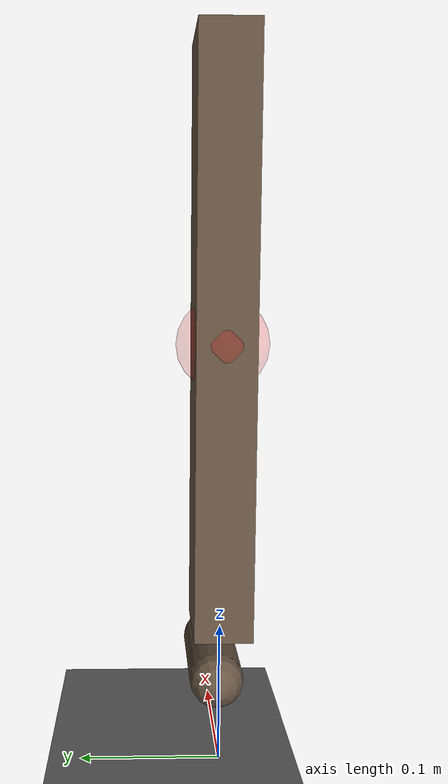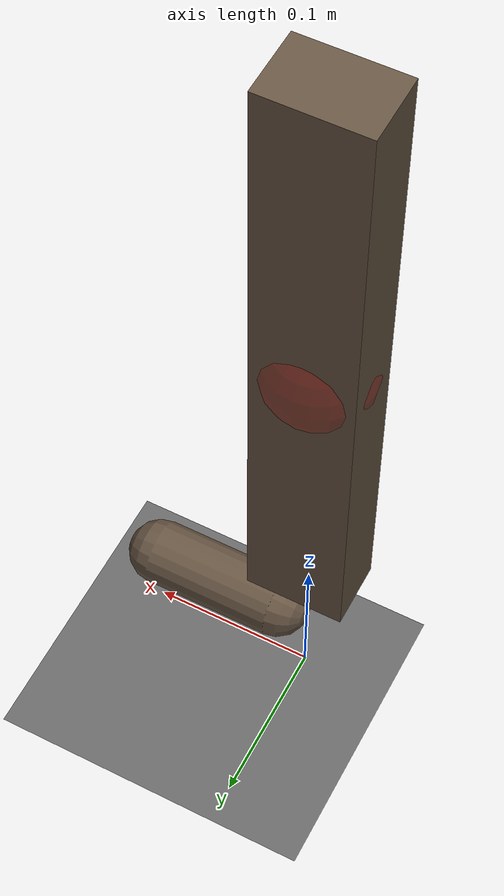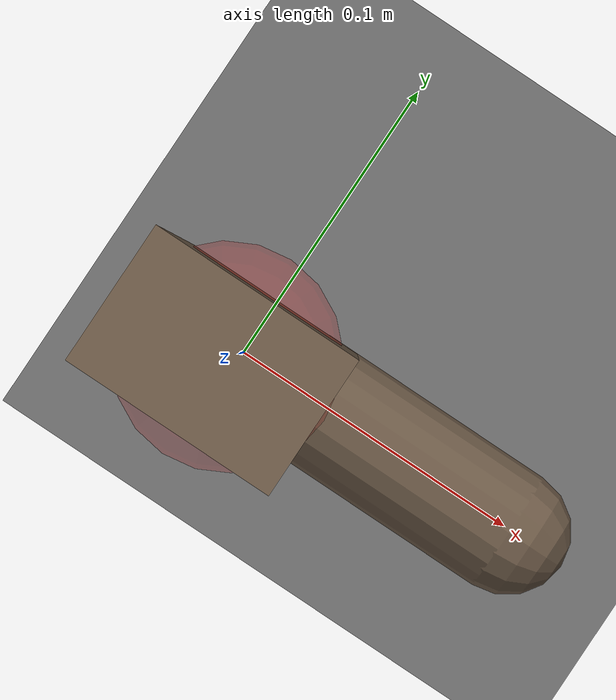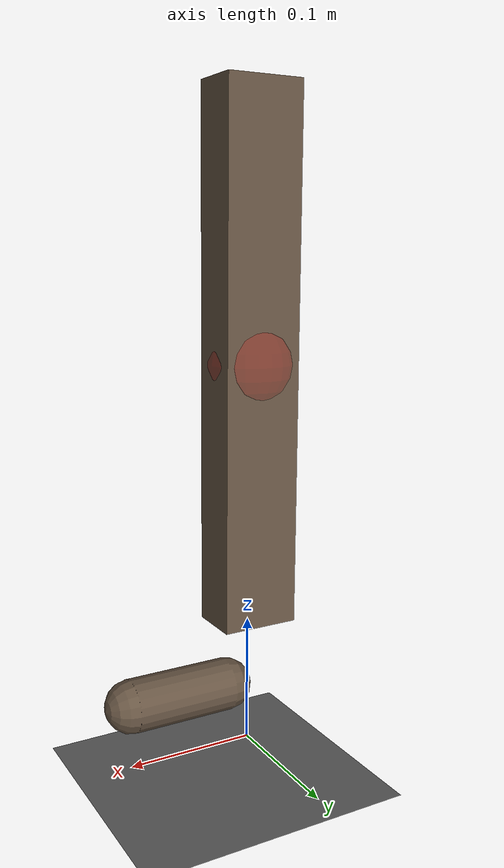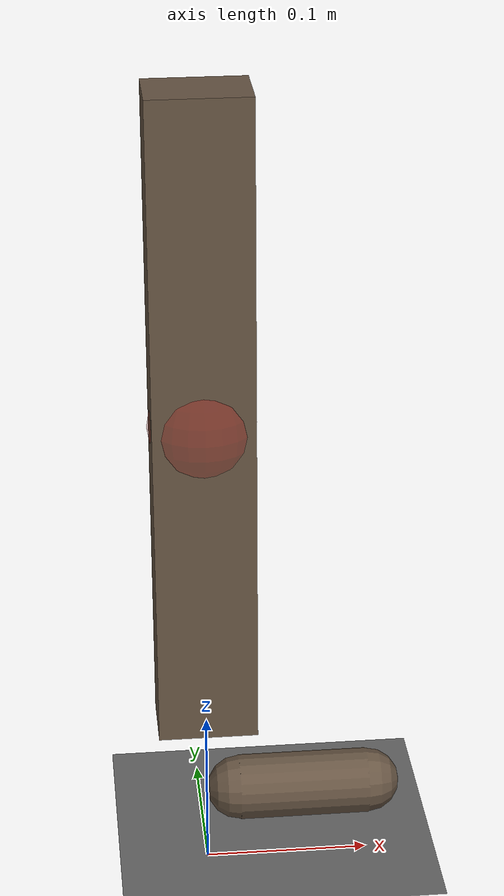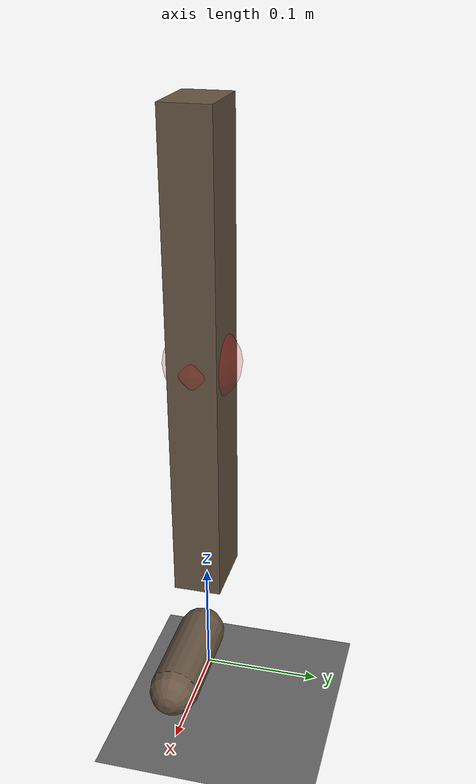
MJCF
<mujoco model="skate">
  <compiler angle="radian" inertiafromgeom="true"/>
  <default>
    <joint armature="1" limited="true"/>
    <geom conaffinity="0" contype="0" friction="1 0.1 0.1" rgba="0.4 0.33 0.26 1.0"/>
  </default>
  <!-- Removed RK4 integrator for brax. -->
  <option gravity="0 0 -9.81" timestep="0.01" />
  <custom>
    <!-- brax custom params -->
    <numeric data="0 0 .1 0" name="init_qpos"/>
    <numeric data="1000" name="constraint_stiffness"/>
    <numeric data="1000" name="constraint_limit_stiffness"/>
    <numeric data="3" name="constraint_vel_damping"/>
    <numeric data="0.1" name="constraint_ang_damping"/>
    <numeric data="0.0" name="ang_damping"/>
    <numeric data="0" name="spring_mass_scale"/>
    <numeric data="1" name="spring_inertia_scale"/>
    <numeric data="5" name="solver_maxls"/>
  </custom>
  <asset>
    <texture builtin="gradient" height="100" rgb1="1 1 1" rgb2="0 0 0" type="skybox" width="100"/>
    <texture builtin="flat" height="1278" mark="cross" markrgb="1 1 1" name="texgeom" random="0.01" rgb1="0.8 0.6 0.4" rgb2="0.8 0.6 0.4" type="cube" width="127"/>
    <texture builtin="checker" height="100" name="texplane" rgb1="0 0 0" rgb2="0.8 0.8 0.8" type="2d" width="100"/>
    <material name="MatPlane" reflectance="0.5" shininess="1" specular="1" texrepeat="60 60" texture="texplane"/>
    <material name="geom" texture="texgeom" texuniform="true"/>
  </asset>
  <worldbody>
    <light diffuse=".5 .5 .5" pos="0 0 3" dir="0 0 -1"/>
    <camera name="overview" pos="0 -5 2" xyaxes="1 0 0 0 .4 1" fovy="90"/>
    <!-- Arena -->
    <geom conaffinity="0" contype="0" material="MatPlane" name="ground" pos="0 0 0" size="5 5 0.1" type="plane" rgba="0.5 0.5 0.5 1.0"/>

    <body name="leg" pos="0 0 .3">
      <camera name="track" mode="trackcom" pos="0 -3 0.3" xyaxes="1 0 0 0 0 1"/>
      <geom name="shin" type="box" size=".03 .02 .2"/>
      <geom name="skate" type="capsule" fromto=".02 0 -.25 .1 0 -.25" size=".02"/>
      <joint type="slide" limited="false" axis="1 0 0"/>
      <joint type="slide" limited="false" axis="0 1 0"/>
      <joint type="slide" limited="false" axis="0 0 1"/>
      <joint type="hinge" limited="false" name="z_hinge" axis="0 0 1"/>
      <site name="thruster_site" size="0.032" type="sphere" rgba="1 0 0 .1"/>
    </body>
  </worldbody>
  <actuator>
    <motor ctrllimited="true" ctrlrange="-1.0 1.0" gear="10.0" site="thruster_site" name="x"/>
    <motor ctrllimited="true" ctrlrange="-1.0 1.0" gear="30.0" joint="z_hinge"/>
  </actuator>

  <contact>
    <pair name="non-isotropic" geom1="ground" geom2="skate" condim="3" friction="0.1 1"/>
  </contact>
</mujoco>
